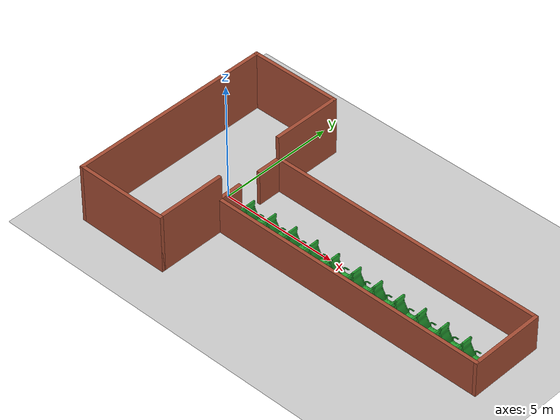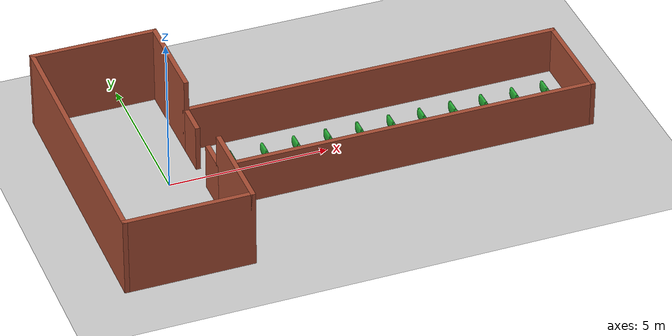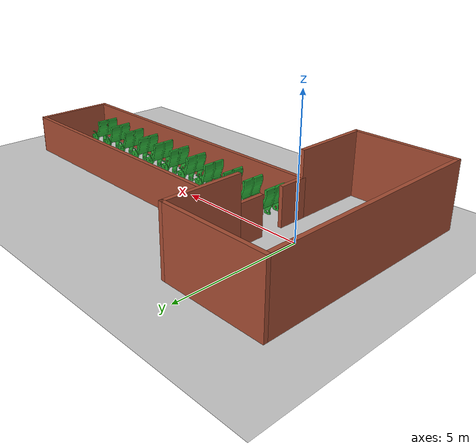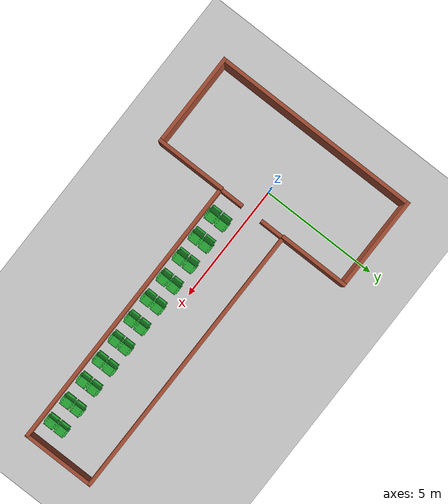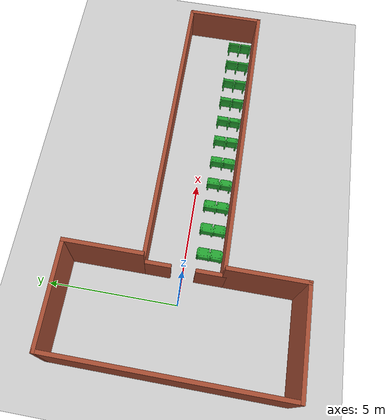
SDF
<sdf version="1.7">
 <world name="default">
  <model name="ground_plane">
   <static>1</static>
   <link name="link">
    <collision name="collision">
     <geometry><plane><normal>0 0 1</normal><size>100 100</size></plane></geometry>
     <surface><friction><ode><mu>100</mu><mu2>50</mu2></ode></friction></surface>
    </collision>
    <visual name="visual">
     <cast_shadows>0</cast_shadows>
     <geometry><plane><normal>0 0 1</normal><size>100 100</size></plane></geometry>
     <material>
      <script><uri>file://media/materials/scripts/gazebo.material</uri><name>Gazebo/Grey</name></script>
     </material>
    </visual>
   </link>
  </model>
  <model name="train_body">
   <pose>5.08783 -0.006982 0 0 0 -1.57246</pose>
   <link name="Wall_12">
    <pose>0 -4.0165 0 0 -0 3.14159</pose>
    <visual name="Wall_12_Visual_0">
     <pose>-1.01653 0 0.75 0 -0 0</pose>
     <geometry><box><size>1.12829 0.15 1.5</size></box></geometry>
     <material>
      <script><uri>file://media/materials/scripts/gazebo.material</uri><name>Gazebo/Bricks</name></script>
      <ambient>1 1 1 1</ambient>
     </material>
     <meta><layer>0</layer></meta>
    </visual>
    <collision name="Wall_12_Collision_0">
     <geometry><box><size>1.12829 0.15 1.5</size></box></geometry>
     <pose>-1.01653 0 0.75 0 -0 0</pose>
    </collision>
    <visual name="Wall_12_Visual_1">
     <pose>1.01414 0 0.75 0 -0 0</pose>
     <geometry><box><size>1.13307 0.15 1.5</size></box></geometry>
     <material>
      <script><uri>file://media/materials/scripts/gazebo.material</uri><name>Gazebo/Bricks</name></script>
      <ambient>1 1 1 1</ambient>
     </material>
     <meta><layer>0</layer></meta>
    </visual>
    <collision name="Wall_12_Collision_1">
     <geometry><box><size>1.13307 0.15 1.5</size></box></geometry>
     <pose>1.01414 0 0.75 0 -0 0</pose>
    </collision>
   </link>
   <link name="Wall_14">
    <collision name="Wall_14_Collision">
     <geometry><box><size>12 0.15 1.5</size></box></geometry>
     <pose>0 0 0.75 0 -0 0</pose>
    </collision>
    <visual name="Wall_14_Visual">
     <pose>0 0 0.75 0 -0 0</pose>
     <geometry><box><size>12 0.15 1.5</size></box></geometry>
     <material>
      <script><uri>file://media/materials/scripts/gazebo.material</uri><name>Gazebo/Bricks</name></script>
      <ambient>1 1 1 1</ambient>
     </material>
     <meta><layer>0</layer></meta>
    </visual>
    <pose>1.5055 1.9085 0 0 -0 1.5708</pose>
   </link>
   <link name="Wall_17">
    <collision name="Wall_17_Collision">
     <geometry><box><size>12 0.15 1.5</size></box></geometry>
     <pose>0 0 0.75 0 -0 0</pose>
    </collision>
    <visual name="Wall_17_Visual">
     <pose>0 0 0.75 0 -0 0</pose>
     <geometry><box><size>12 0.15 1.5</size></box></geometry>
     <material>
      <script><uri>file://media/materials/scripts/gazebo.material</uri><name>Gazebo/Bricks</name></script>
      <ambient>1 1 1 1</ambient>
     </material>
     <meta><layer>0</layer></meta>
    </visual>
    <pose>-1.50568 1.9085 0 0 -0 1.57083</pose>
   </link>
   <link name="Wall_19">
    <collision name="Wall_19_Collision">
     <geometry><box><size>3.15 0.15 1.5</size></box></geometry>
     <pose>0 0 0.75 0 -0 0</pose>
    </collision>
    <visual name="Wall_19_Visual">
     <pose>0 0 0.75 0 -0 0</pose>
     <geometry><box><size>3.15 0.15 1.5</size></box></geometry>
     <material>
      <script><uri>file://media/materials/scripts/gazebo.material</uri><name>Gazebo/Bricks</name></script>
      <ambient>1 1 1 1</ambient>
     </material>
     <meta><layer>0</layer></meta>
    </visual>
    <pose>0.0055 7.8665 0 0 -0 0</pose>
   </link>
   <link name="Wall_21">
    <collision name="Wall_21_Collision">
     <geometry><box><size>3 0.15 2.5</size></box></geometry>
     <pose>0 0 1.25 0 -0 0</pose>
    </collision>
    <visual name="Wall_21_Visual">
     <pose>0 0 1.25 0 -0 0</pose>
     <geometry><box><size>3 0.15 2.5</size></box></geometry>
     <material>
      <script><uri>file://media/materials/scripts/gazebo.material</uri><name>Gazebo/Bricks</name></script>
      <ambient>1 1 1 1</ambient>
     </material>
     <meta><layer>0</layer></meta>
    </visual>
    <pose>-2.9305 -4.0165 0 0 -0 3.14159</pose>
   </link>
   <link name="Wall_22">
    <collision name="Wall_22_Collision">
     <geometry><box><size>4 0.15 2.5</size></box></geometry>
     <pose>0 0 1.25 0 -0 0</pose>
    </collision>
    <visual name="Wall_22_Visual">
     <pose>0 0 1.25 0 -0 0</pose>
     <geometry><box><size>4 0.15 2.5</size></box></geometry>
     <material>
      <script><uri>file://media/materials/scripts/gazebo.material</uri><name>Gazebo/Bricks</name></script>
      <ambient>1 1 1 1</ambient>
     </material>
     <meta><layer>0</layer></meta>
    </visual>
    <pose>-4.3555 -5.9415 0 0 -0 -1.5708</pose>
   </link>
   <link name="Wall_24">
    <collision name="Wall_24_Collision">
     <geometry><box><size>3 0.15 2.5</size></box></geometry>
     <pose>0 0 1.25 0 -0 0</pose>
    </collision>
    <visual name="Wall_24_Visual">
     <pose>0 0 1.25 0 -0 0</pose>
     <geometry><box><size>3 0.15 2.5</size></box></geometry>
     <material>
      <script><uri>file://media/materials/scripts/gazebo.material</uri><name>Gazebo/Bricks</name></script>
      <ambient>1 1 1 1</ambient>
     </material>
     <meta><layer>0</layer></meta>
    </visual>
    <pose>2.9305 -4.0165 0 0 -0 0</pose>
   </link>
   <link name="Wall_25">
    <collision name="Wall_25_Collision">
     <geometry><box><size>4 0.15 2.5</size></box></geometry>
     <pose>0 0 1.25 0 -0 0</pose>
    </collision>
    <visual name="Wall_25_Visual">
     <pose>0 0 1.25 0 -0 0</pose>
     <geometry><box><size>4 0.15 2.5</size></box></geometry>
     <material>
      <script><uri>file://media/materials/scripts/gazebo.material</uri><name>Gazebo/Bricks</name></script>
      <ambient>1 1 1 1</ambient>
     </material>
     <meta><layer>0</layer></meta>
    </visual>
    <pose>4.3555 -5.9415 0 0 -0 -1.5708</pose>
   </link>
   <link name="Wall_26">
    <collision name="Wall_26_Collision">
     <geometry><box><size>8.861 0.15 2.5</size></box></geometry>
     <pose>0 0 1.25 0 -0 0</pose>
    </collision>
    <visual name="Wall_26_Visual">
     <pose>0 0 1.25 0 -0 0</pose>
     <geometry><box><size>8.861 0.15 2.5</size></box></geometry>
     <material>
      <script><uri>file://media/materials/scripts/gazebo.material</uri><name>Gazebo/Bricks</name></script>
      <ambient>1 1 1 1</ambient>
     </material>
     <meta><layer>0</layer></meta>
    </visual>
    <pose>0 -7.8665 0 0 -0 3.14159</pose>
   </link>
   <static>1</static>
  </model>
  <model name="seat1_row">
   <model name="seat1">
    <link name="link_1">
     <inertial>
      <mass>0</mass>
      <inertia><ixx>0</ixx><ixy>0</ixy><ixz>0</ixz><iyy>0</iyy><iyz>0</iyz><izz>0</izz></inertia>
     </inertial>
     <gravity>0</gravity>
     <visual name="visual">
      <geometry>
       <mesh><uri>model://seat1_row/meshes/seat1.stl</uri><scale>0.001 0.001 0.001</scale></mesh>
      </geometry>
      <material>
       <lighting>1</lighting>
       <script><uri>file://media/materials/scripts/gazebo.material</uri><name>Gazebo/Green</name></script>
       <shader type="vertex"><normal_map>__default__</normal_map></shader>
       <ambient>0.3 0.3 0.3 1</ambient>
       <diffuse>0.7 0.7 0.7 1</diffuse>
       <specular>0.01 0.01 0.01 1</specular>
       <emissive>0 0 0 1</emissive>
      </material>
     </visual>
     <collision name="collision">
      <geometry>
       <mesh><uri>model://seat1_row/meshes/seat1.stl</uri><scale>0.001 0.001 0.001</scale></mesh>
      </geometry>
      <surface>
       <friction>
        <ode><mu>100000</mu><mu2>100000</mu2><fdir1>0 0 0</fdir1><slip1>0</slip1><slip2>0</slip2></ode>
        <torsional>
         <coefficient>1</coefficient>
         <patch_radius>0</patch_radius>
         <surface_radius>0</surface_radius>
         <use_patch_radius>1</use_patch_radius>
         <ode><slip>0</slip></ode>
        </torsional>
       </friction>
       <bounce><restitution_coefficient>0</restitution_coefficient><threshold>1e+06</threshold></bounce>
       <contact>
        <collide_without_contact>0</collide_without_contact>
        <collide_without_contact_bitmask>1</collide_without_contact_bitmask>
        <collide_bitmask>1</collide_bitmask>
        <ode>
         <soft_cfm>0</soft_cfm>
         <soft_erp>0.2</soft_erp>
         <kp>1e+13</kp>
         <kd>1</kd>
         <max_vel>0.01</max_vel>
         <min_depth>0</min_depth>
        </ode>
        <bullet>
         <split_impulse>1</split_impulse>
         <split_impulse_penetration_threshold>-0.01</split_impulse_penetration_threshold>
         <soft_cfm>0</soft_cfm>
         <soft_erp>0.2</soft_erp>
         <kp>1e+13</kp>
         <kd>1</kd>
        </bullet>
       </contact>
      </surface>
     </collision>
    </link>
    <static>0</static>
    <pose>-5.0343 -0.01706 0 0 -0 0</pose>
   </model>
   <model name="seat1_0">
    <link name="link_1">
     <inertial>
      <mass>0</mass>
      <inertia><ixx>0</ixx><ixy>0</ixy><ixz>0</ixz><iyy>0</iyy><iyz>0</iyz><izz>0</izz></inertia>
     </inertial>
     <gravity>0</gravity>
     <visual name="visual">
      <geometry>
       <mesh><uri>model://seat1_row/meshes/seat1.stl</uri><scale>0.001 0.001 0.001</scale></mesh>
      </geometry>
      <material>
       <lighting>1</lighting>
       <script><uri>file://media/materials/scripts/gazebo.material</uri><name>Gazebo/Green</name></script>
       <shader type="vertex"><normal_map>__default__</normal_map></shader>
       <ambient>0.3 0.3 0.3 1</ambient>
       <diffuse>0.7 0.7 0.7 1</diffuse>
       <specular>0.01 0.01 0.01 1</specular>
       <emissive>0 0 0 1</emissive>
      </material>
     </visual>
     <collision name="collision">
      <geometry>
       <mesh><uri>model://seat1_row/meshes/seat1.stl</uri><scale>0.001 0.001 0.001</scale></mesh>
      </geometry>
      <surface>
       <friction>
        <ode><mu>100000</mu><mu2>100000</mu2><fdir1>0 0 0</fdir1><slip1>0</slip1><slip2>0</slip2></ode>
        <torsional>
         <coefficient>1</coefficient>
         <patch_radius>0</patch_radius>
         <surface_radius>0</surface_radius>
         <use_patch_radius>1</use_patch_radius>
         <ode><slip>0</slip></ode>
        </torsional>
       </friction>
       <bounce><restitution_coefficient>0</restitution_coefficient><threshold>1e+06</threshold></bounce>
       <contact>
        <collide_without_contact>0</collide_without_contact>
        <collide_without_contact_bitmask>1</collide_without_contact_bitmask>
        <collide_bitmask>1</collide_bitmask>
        <ode>
         <soft_cfm>0</soft_cfm>
         <soft_erp>0.2</soft_erp>
         <kp>1e+13</kp>
         <kd>1</kd>
         <max_vel>0.01</max_vel>
         <min_depth>0</min_depth>
        </ode>
        <bullet>
         <split_impulse>1</split_impulse>
         <split_impulse_penetration_threshold>-0.01</split_impulse_penetration_threshold>
         <soft_cfm>0</soft_cfm>
         <soft_erp>0.2</soft_erp>
         <kp>1e+13</kp>
         <kd>1</kd>
        </bullet>
       </contact>
      </surface>
     </collision>
    </link>
    <static>0</static>
    <pose>-4.00584 -0.001062 0 0 -0 0</pose>
   </model>
   <model name="seat1_1">
    <link name="link_1">
     <inertial>
      <mass>0</mass>
      <inertia><ixx>0</ixx><ixy>0</ixy><ixz>0</ixz><iyy>0</iyy><iyz>0</iyz><izz>0</izz></inertia>
     </inertial>
     <gravity>0</gravity>
     <visual name="visual">
      <geometry>
       <mesh><uri>model://seat1_row/meshes/seat1.stl</uri><scale>0.001 0.001 0.001</scale></mesh>
      </geometry>
      <material>
       <lighting>1</lighting>
       <script><uri>file://media/materials/scripts/gazebo.material</uri><name>Gazebo/Green</name></script>
       <shader type="vertex"><normal_map>__default__</normal_map></shader>
       <ambient>0.3 0.3 0.3 1</ambient>
       <diffuse>0.7 0.7 0.7 1</diffuse>
       <specular>0.01 0.01 0.01 1</specular>
       <emissive>0 0 0 1</emissive>
      </material>
     </visual>
     <collision name="collision">
      <geometry>
       <mesh><uri>model://seat1_row/meshes/seat1.stl</uri><scale>0.001 0.001 0.001</scale></mesh>
      </geometry>
      <surface>
       <friction>
        <ode><mu>100000</mu><mu2>100000</mu2><fdir1>0 0 0</fdir1><slip1>0</slip1><slip2>0</slip2></ode>
        <torsional>
         <coefficient>1</coefficient>
         <patch_radius>0</patch_radius>
         <surface_radius>0</surface_radius>
         <use_patch_radius>1</use_patch_radius>
         <ode><slip>0</slip></ode>
        </torsional>
       </friction>
       <bounce><restitution_coefficient>0</restitution_coefficient><threshold>1e+06</threshold></bounce>
       <contact>
        <collide_without_contact>0</collide_without_contact>
        <collide_without_contact_bitmask>1</collide_without_contact_bitmask>
        <collide_bitmask>1</collide_bitmask>
        <ode>
         <soft_cfm>0</soft_cfm>
         <soft_erp>0.2</soft_erp>
         <kp>1e+13</kp>
         <kd>1</kd>
         <max_vel>0.01</max_vel>
         <min_depth>0</min_depth>
        </ode>
        <bullet>
         <split_impulse>1</split_impulse>
         <split_impulse_penetration_threshold>-0.01</split_impulse_penetration_threshold>
         <soft_cfm>0</soft_cfm>
         <soft_erp>0.2</soft_erp>
         <kp>1e+13</kp>
         <kd>1</kd>
        </bullet>
       </contact>
      </surface>
     </collision>
    </link>
    <static>0</static>
    <pose>-3.00666 0.000776 0 0 -0 0</pose>
   </model>
   <model name="seat1_2">
    <link name="link_1">
     <inertial>
      <mass>0</mass>
      <inertia><ixx>0</ixx><ixy>0</ixy><ixz>0</ixz><iyy>0</iyy><iyz>0</iyz><izz>0</izz></inertia>
     </inertial>
     <gravity>0</gravity>
     <visual name="visual">
      <geometry>
       <mesh><uri>model://seat1_row/meshes/seat1.stl</uri><scale>0.001 0.001 0.001</scale></mesh>
      </geometry>
      <material>
       <lighting>1</lighting>
       <script><uri>file://media/materials/scripts/gazebo.material</uri><name>Gazebo/Green</name></script>
       <shader type="vertex"><normal_map>__default__</normal_map></shader>
       <ambient>0.3 0.3 0.3 1</ambient>
       <diffuse>0.7 0.7 0.7 1</diffuse>
       <specular>0.01 0.01 0.01 1</specular>
       <emissive>0 0 0 1</emissive>
      </material>
     </visual>
     <collision name="collision">
      <geometry>
       <mesh><uri>model://seat1_row/meshes/seat1.stl</uri><scale>0.001 0.001 0.001</scale></mesh>
      </geometry>
      <surface>
       <friction>
        <ode><mu>100000</mu><mu2>100000</mu2><fdir1>0 0 0</fdir1><slip1>0</slip1><slip2>0</slip2></ode>
        <torsional>
         <coefficient>1</coefficient>
         <patch_radius>0</patch_radius>
         <surface_radius>0</surface_radius>
         <use_patch_radius>1</use_patch_radius>
         <ode><slip>0</slip></ode>
        </torsional>
       </friction>
       <bounce><restitution_coefficient>0</restitution_coefficient><threshold>1e+06</threshold></bounce>
       <contact>
        <collide_without_contact>0</collide_without_contact>
        <collide_without_contact_bitmask>1</collide_without_contact_bitmask>
        <collide_bitmask>1</collide_bitmask>
        <ode>
         <soft_cfm>0</soft_cfm>
         <soft_erp>0.2</soft_erp>
         <kp>1e+13</kp>
         <kd>1</kd>
         <max_vel>0.01</max_vel>
         <min_depth>0</min_depth>
        </ode>
        <bullet>
         <split_impulse>1</split_impulse>
         <split_impulse_penetration_threshold>-0.01</split_impulse_penetration_threshold>
         <soft_cfm>0</soft_cfm>
         <soft_erp>0.2</soft_erp>
         <kp>1e+13</kp>
         <kd>1</kd>
        </bullet>
       </contact>
      </surface>
     </collision>
    </link>
    <static>0</static>
    <pose>-1.99785 0.004244 0 0 -0 0</pose>
   </model>
   <model name="seat1_3">
    <link name="link_1">
     <inertial>
      <mass>0</mass>
      <inertia><ixx>0</ixx><ixy>0</ixy><ixz>0</ixz><iyy>0</iyy><iyz>0</iyz><izz>0</izz></inertia>
     </inertial>
     <gravity>0</gravity>
     <visual name="visual">
      <geometry>
       <mesh><uri>model://seat1_row/meshes/seat1.stl</uri><scale>0.001 0.001 0.001</scale></mesh>
      </geometry>
      <material>
       <lighting>1</lighting>
       <script><uri>file://media/materials/scripts/gazebo.material</uri><name>Gazebo/Green</name></script>
       <shader type="vertex"><normal_map>__default__</normal_map></shader>
       <ambient>0.3 0.3 0.3 1</ambient>
       <diffuse>0.7 0.7 0.7 1</diffuse>
       <specular>0.01 0.01 0.01 1</specular>
       <emissive>0 0 0 1</emissive>
      </material>
     </visual>
     <collision name="collision">
      <geometry>
       <mesh><uri>model://seat1_row/meshes/seat1.stl</uri><scale>0.001 0.001 0.001</scale></mesh>
      </geometry>
      <surface>
       <friction>
        <ode><mu>100000</mu><mu2>100000</mu2><fdir1>0 0 0</fdir1><slip1>0</slip1><slip2>0</slip2></ode>
        <torsional>
         <coefficient>1</coefficient>
         <patch_radius>0</patch_radius>
         <surface_radius>0</surface_radius>
         <use_patch_radius>1</use_patch_radius>
         <ode><slip>0</slip></ode>
        </torsional>
       </friction>
       <bounce><restitution_coefficient>0</restitution_coefficient><threshold>1e+06</threshold></bounce>
       <contact>
        <collide_without_contact>0</collide_without_contact>
        <collide_without_contact_bitmask>1</collide_without_contact_bitmask>
        <collide_bitmask>1</collide_bitmask>
        <ode>
         <soft_cfm>0</soft_cfm>
         <soft_erp>0.2</soft_erp>
         <kp>1e+13</kp>
         <kd>1</kd>
         <max_vel>0.01</max_vel>
         <min_depth>0</min_depth>
        </ode>
        <bullet>
         <split_impulse>1</split_impulse>
         <split_impulse_penetration_threshold>-0.01</split_impulse_penetration_threshold>
         <soft_cfm>0</soft_cfm>
         <soft_erp>0.2</soft_erp>
         <kp>1e+13</kp>
         <kd>1</kd>
        </bullet>
       </contact>
      </surface>
     </collision>
    </link>
    <static>0</static>
    <pose>-0.992785 0.003913 0 0 -0 0</pose>
   </model>
   <model name="seat1_4">
    <link name="link_1">
     <inertial>
      <mass>0</mass>
      <inertia><ixx>0</ixx><ixy>0</ixy><ixz>0</ixz><iyy>0</iyy><iyz>0</iyz><izz>0</izz></inertia>
     </inertial>
     <gravity>0</gravity>
     <visual name="visual">
      <geometry>
       <mesh><uri>model://seat1_row/meshes/seat1.stl</uri><scale>0.001 0.001 0.001</scale></mesh>
      </geometry>
      <material>
       <lighting>1</lighting>
       <script><uri>file://media/materials/scripts/gazebo.material</uri><name>Gazebo/Green</name></script>
       <shader type="vertex"><normal_map>__default__</normal_map></shader>
       <ambient>0.3 0.3 0.3 1</ambient>
       <diffuse>0.7 0.7 0.7 1</diffuse>
       <specular>0.01 0.01 0.01 1</specular>
       <emissive>0 0 0 1</emissive>
      </material>
     </visual>
     <collision name="collision">
      <geometry>
       <mesh><uri>model://seat1_row/meshes/seat1.stl</uri><scale>0.001 0.001 0.001</scale></mesh>
      </geometry>
      <surface>
       <friction>
        <ode><mu>100000</mu><mu2>100000</mu2><fdir1>0 0 0</fdir1><slip1>0</slip1><slip2>0</slip2></ode>
        <torsional>
         <coefficient>1</coefficient>
         <patch_radius>0</patch_radius>
         <surface_radius>0</surface_radius>
         <use_patch_radius>1</use_patch_radius>
         <ode><slip>0</slip></ode>
        </torsional>
       </friction>
       <bounce><restitution_coefficient>0</restitution_coefficient><threshold>1e+06</threshold></bounce>
       <contact>
        <collide_without_contact>0</collide_without_contact>
        <collide_without_contact_bitmask>1</collide_without_contact_bitmask>
        <collide_bitmask>1</collide_bitmask>
        <ode>
         <soft_cfm>0</soft_cfm>
         <soft_erp>0.2</soft_erp>
         <kp>1e+13</kp>
         <kd>1</kd>
         <max_vel>0.01</max_vel>
         <min_depth>0</min_depth>
        </ode>
        <bullet>
         <split_impulse>1</split_impulse>
         <split_impulse_penetration_threshold>-0.01</split_impulse_penetration_threshold>
         <soft_cfm>0</soft_cfm>
         <soft_erp>0.2</soft_erp>
         <kp>1e+13</kp>
         <kd>1</kd>
        </bullet>
       </contact>
      </surface>
     </collision>
    </link>
    <static>0</static>
    <pose>0.016228 0.001473 0 0 -0 0</pose>
   </model>
   <model name="seat1_5">
    <link name="link_1">
     <inertial>
      <mass>0</mass>
      <inertia><ixx>0</ixx><ixy>0</ixy><ixz>0</ixz><iyy>0</iyy><iyz>0</iyz><izz>0</izz></inertia>
     </inertial>
     <gravity>0</gravity>
     <visual name="visual">
      <geometry>
       <mesh><uri>model://seat1_row/meshes/seat1.stl</uri><scale>0.001 0.001 0.001</scale></mesh>
      </geometry>
      <material>
       <lighting>1</lighting>
       <script><uri>file://media/materials/scripts/gazebo.material</uri><name>Gazebo/Green</name></script>
       <shader type="vertex"><normal_map>__default__</normal_map></shader>
       <ambient>0.3 0.3 0.3 1</ambient>
       <diffuse>0.7 0.7 0.7 1</diffuse>
       <specular>0.01 0.01 0.01 1</specular>
       <emissive>0 0 0 1</emissive>
      </material>
     </visual>
     <collision name="collision">
      <geometry>
       <mesh><uri>model://seat1_row/meshes/seat1.stl</uri><scale>0.001 0.001 0.001</scale></mesh>
      </geometry>
      <surface>
       <friction>
        <ode><mu>100000</mu><mu2>100000</mu2><fdir1>0 0 0</fdir1><slip1>0</slip1><slip2>0</slip2></ode>
        <torsional>
         <coefficient>1</coefficient>
         <patch_radius>0</patch_radius>
         <surface_radius>0</surface_radius>
         <use_patch_radius>1</use_patch_radius>
         <ode><slip>0</slip></ode>
        </torsional>
       </friction>
       <bounce><restitution_coefficient>0</restitution_coefficient><threshold>1e+06</threshold></bounce>
       <contact>
        <collide_without_contact>0</collide_without_contact>
        <collide_without_contact_bitmask>1</collide_without_contact_bitmask>
        <collide_bitmask>1</collide_bitmask>
        <ode>
         <soft_cfm>0</soft_cfm>
         <soft_erp>0.2</soft_erp>
         <kp>1e+13</kp>
         <kd>1</kd>
         <max_vel>0.01</max_vel>
         <min_depth>0</min_depth>
        </ode>
        <bullet>
         <split_impulse>1</split_impulse>
         <split_impulse_penetration_threshold>-0.01</split_impulse_penetration_threshold>
         <soft_cfm>0</soft_cfm>
         <soft_erp>0.2</soft_erp>
         <kp>1e+13</kp>
         <kd>1</kd>
        </bullet>
       </contact>
      </surface>
     </collision>
    </link>
    <static>0</static>
    <pose>1.00599 0.000701 0 0 -0 0</pose>
   </model>
   <model name="seat1_6">
    <link name="link_1">
     <inertial>
      <mass>0</mass>
      <inertia><ixx>0</ixx><ixy>0</ixy><ixz>0</ixz><iyy>0</iyy><iyz>0</iyz><izz>0</izz></inertia>
     </inertial>
     <gravity>0</gravity>
     <visual name="visual">
      <geometry>
       <mesh><uri>model://seat1_row/meshes/seat1.stl</uri><scale>0.001 0.001 0.001</scale></mesh>
      </geometry>
      <material>
       <lighting>1</lighting>
       <script><uri>file://media/materials/scripts/gazebo.material</uri><name>Gazebo/Green</name></script>
       <shader type="vertex"><normal_map>__default__</normal_map></shader>
       <ambient>0.3 0.3 0.3 1</ambient>
       <diffuse>0.7 0.7 0.7 1</diffuse>
       <specular>0.01 0.01 0.01 1</specular>
       <emissive>0 0 0 1</emissive>
      </material>
     </visual>
     <collision name="collision">
      <geometry>
       <mesh><uri>model://seat1_row/meshes/seat1.stl</uri><scale>0.001 0.001 0.001</scale></mesh>
      </geometry>
      <surface>
       <friction>
        <ode><mu>100000</mu><mu2>100000</mu2><fdir1>0 0 0</fdir1><slip1>0</slip1><slip2>0</slip2></ode>
        <torsional>
         <coefficient>1</coefficient>
         <patch_radius>0</patch_radius>
         <surface_radius>0</surface_radius>
         <use_patch_radius>1</use_patch_radius>
         <ode><slip>0</slip></ode>
        </torsional>
       </friction>
       <bounce><restitution_coefficient>0</restitution_coefficient><threshold>1e+06</threshold></bounce>
       <contact>
        <collide_without_contact>0</collide_without_contact>
        <collide_without_contact_bitmask>1</collide_without_contact_bitmask>
        <collide_bitmask>1</collide_bitmask>
        <ode>
         <soft_cfm>0</soft_cfm>
         <soft_erp>0.2</soft_erp>
         <kp>1e+13</kp>
         <kd>1</kd>
         <max_vel>0.01</max_vel>
         <min_depth>0</min_depth>
        </ode>
        <bullet>
         <split_impulse>1</split_impulse>
         <split_impulse_penetration_threshold>-0.01</split_impulse_penetration_threshold>
         <soft_cfm>0</soft_cfm>
         <soft_erp>0.2</soft_erp>
         <kp>1e+13</kp>
         <kd>1</kd>
        </bullet>
       </contact>
      </surface>
     </collision>
    </link>
    <static>0</static>
    <pose>2.00535 0.002232 0 0 -0 0</pose>
   </model>
   <model name="seat1_7">
    <link name="link_1">
     <inertial>
      <mass>0</mass>
      <inertia><ixx>0</ixx><ixy>0</ixy><ixz>0</ixz><iyy>0</iyy><iyz>0</iyz><izz>0</izz></inertia>
     </inertial>
     <gravity>0</gravity>
     <visual name="visual">
      <geometry>
       <mesh><uri>model://seat1_row/meshes/seat1.stl</uri><scale>0.001 0.001 0.001</scale></mesh>
      </geometry>
      <material>
       <lighting>1</lighting>
       <script><uri>file://media/materials/scripts/gazebo.material</uri><name>Gazebo/Green</name></script>
       <shader type="vertex"><normal_map>__default__</normal_map></shader>
       <ambient>0.3 0.3 0.3 1</ambient>
       <diffuse>0.7 0.7 0.7 1</diffuse>
       <specular>0.01 0.01 0.01 1</specular>
       <emissive>0 0 0 1</emissive>
      </material>
     </visual>
     <collision name="collision">
      <geometry>
       <mesh><uri>model://seat1_row/meshes/seat1.stl</uri><scale>0.001 0.001 0.001</scale></mesh>
      </geometry>
      <surface>
       <friction>
        <ode><mu>100000</mu><mu2>100000</mu2><fdir1>0 0 0</fdir1><slip1>0</slip1><slip2>0</slip2></ode>
        <torsional>
         <coefficient>1</coefficient>
         <patch_radius>0</patch_radius>
         <surface_radius>0</surface_radius>
         <use_patch_radius>1</use_patch_radius>
         <ode><slip>0</slip></ode>
        </torsional>
       </friction>
       <bounce><restitution_coefficient>0</restitution_coefficient><threshold>1e+06</threshold></bounce>
       <contact>
        <collide_without_contact>0</collide_without_contact>
        <collide_without_contact_bitmask>1</collide_without_contact_bitmask>
        <collide_bitmask>1</collide_bitmask>
        <ode>
         <soft_cfm>0</soft_cfm>
         <soft_erp>0.2</soft_erp>
         <kp>1e+13</kp>
         <kd>1</kd>
         <max_vel>0.01</max_vel>
         <min_depth>0</min_depth>
        </ode>
        <bullet>
         <split_impulse>1</split_impulse>
         <split_impulse_penetration_threshold>-0.01</split_impulse_penetration_threshold>
         <soft_cfm>0</soft_cfm>
         <soft_erp>0.2</soft_erp>
         <kp>1e+13</kp>
         <kd>1</kd>
        </bullet>
       </contact>
      </surface>
     </collision>
    </link>
    <static>0</static>
    <pose>3.00014 0.001951 0 0 -0 0</pose>
   </model>
   <model name="seat1_8">
    <link name="link_1">
     <inertial>
      <mass>0</mass>
      <inertia><ixx>0</ixx><ixy>0</ixy><ixz>0</ixz><iyy>0</iyy><iyz>0</iyz><izz>0</izz></inertia>
     </inertial>
     <gravity>0</gravity>
     <visual name="visual">
      <geometry>
       <mesh><uri>model://seat1_row/meshes/seat1.stl</uri><scale>0.001 0.001 0.001</scale></mesh>
      </geometry>
      <material>
       <lighting>1</lighting>
       <script><uri>file://media/materials/scripts/gazebo.material</uri><name>Gazebo/Green</name></script>
       <shader type="vertex"><normal_map>__default__</normal_map></shader>
       <ambient>0.3 0.3 0.3 1</ambient>
       <diffuse>0.7 0.7 0.7 1</diffuse>
       <specular>0.01 0.01 0.01 1</specular>
       <emissive>0 0 0 1</emissive>
      </material>
     </visual>
     <collision name="collision">
      <geometry>
       <mesh><uri>model://seat1_row/meshes/seat1.stl</uri><scale>0.001 0.001 0.001</scale></mesh>
      </geometry>
      <surface>
       <friction>
        <ode><mu>100000</mu><mu2>100000</mu2><fdir1>0 0 0</fdir1><slip1>0</slip1><slip2>0</slip2></ode>
        <torsional>
         <coefficient>1</coefficient>
         <patch_radius>0</patch_radius>
         <surface_radius>0</surface_radius>
         <use_patch_radius>1</use_patch_radius>
         <ode><slip>0</slip></ode>
        </torsional>
       </friction>
       <bounce><restitution_coefficient>0</restitution_coefficient><threshold>1e+06</threshold></bounce>
       <contact>
        <collide_without_contact>0</collide_without_contact>
        <collide_without_contact_bitmask>1</collide_without_contact_bitmask>
        <collide_bitmask>1</collide_bitmask>
        <ode>
         <soft_cfm>0</soft_cfm>
         <soft_erp>0.2</soft_erp>
         <kp>1e+13</kp>
         <kd>1</kd>
         <max_vel>0.01</max_vel>
         <min_depth>0</min_depth>
        </ode>
        <bullet>
         <split_impulse>1</split_impulse>
         <split_impulse_penetration_threshold>-0.01</split_impulse_penetration_threshold>
         <soft_cfm>0</soft_cfm>
         <soft_erp>0.2</soft_erp>
         <kp>1e+13</kp>
         <kd>1</kd>
        </bullet>
       </contact>
      </surface>
     </collision>
    </link>
    <static>0</static>
    <pose>4.00893 0.002828 0 0 -0 0</pose>
   </model>
   <model name="seat1_9">
    <link name="link_1">
     <inertial>
      <mass>0</mass>
      <inertia><ixx>0</ixx><ixy>0</ixy><ixz>0</ixz><iyy>0</iyy><iyz>0</iyz><izz>0</izz></inertia>
     </inertial>
     <gravity>0</gravity>
     <visual name="visual">
      <geometry>
       <mesh><uri>model://seat1_row/meshes/seat1.stl</uri><scale>0.001 0.001 0.001</scale></mesh>
      </geometry>
      <material>
       <lighting>1</lighting>
       <script><uri>file://media/materials/scripts/gazebo.material</uri><name>Gazebo/Green</name></script>
       <shader type="vertex"><normal_map>__default__</normal_map></shader>
       <ambient>0.3 0.3 0.3 1</ambient>
       <diffuse>0.7 0.7 0.7 1</diffuse>
       <specular>0.01 0.01 0.01 1</specular>
       <emissive>0 0 0 1</emissive>
      </material>
     </visual>
     <collision name="collision">
      <geometry>
       <mesh><uri>model://seat1_row/meshes/seat1.stl</uri><scale>0.001 0.001 0.001</scale></mesh>
      </geometry>
      <surface>
       <friction>
        <ode><mu>100000</mu><mu2>100000</mu2><fdir1>0 0 0</fdir1><slip1>0</slip1><slip2>0</slip2></ode>
        <torsional>
         <coefficient>1</coefficient>
         <patch_radius>0</patch_radius>
         <surface_radius>0</surface_radius>
         <use_patch_radius>1</use_patch_radius>
         <ode><slip>0</slip></ode>
        </torsional>
       </friction>
       <bounce><restitution_coefficient>0</restitution_coefficient><threshold>1e+06</threshold></bounce>
       <contact>
        <collide_without_contact>0</collide_without_contact>
        <collide_without_contact_bitmask>1</collide_without_contact_bitmask>
        <collide_bitmask>1</collide_bitmask>
        <ode>
         <soft_cfm>0</soft_cfm>
         <soft_erp>0.2</soft_erp>
         <kp>1e+13</kp>
         <kd>1</kd>
         <max_vel>0.01</max_vel>
         <min_depth>0</min_depth>
        </ode>
        <bullet>
         <split_impulse>1</split_impulse>
         <split_impulse_penetration_threshold>-0.01</split_impulse_penetration_threshold>
         <soft_cfm>0</soft_cfm>
         <soft_erp>0.2</soft_erp>
         <kp>1e+13</kp>
         <kd>1</kd>
        </bullet>
       </contact>
      </surface>
     </collision>
    </link>
    <static>0</static>
    <pose>5.0008 5e-06 0 0 -0 0</pose>
   </model>
   <static>0</static>
   <pose>6.69321 -1.391 0 0 -0 0</pose>
  </model>
 </world>
</sdf>
